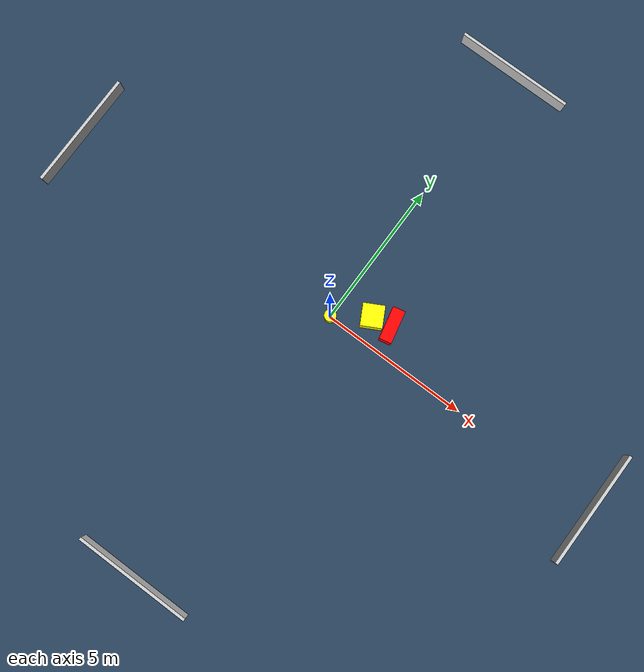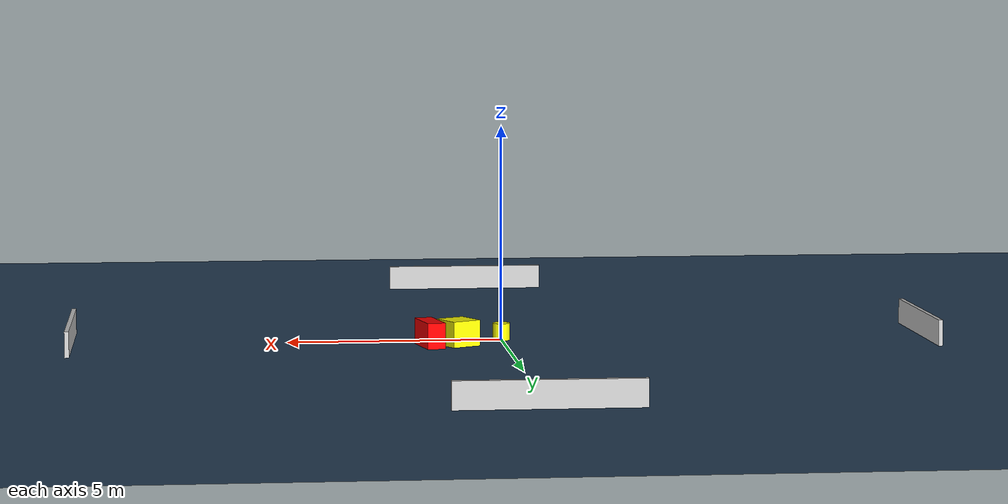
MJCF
<?xml version="1.0" ?>
<mujoco model="generated_environment">
  <option timestep="0.01" integrator="RK4" cone="elliptic"/>
  <default>
    <geom density="1"/>
  </default>
  <asset>
    <texture builtin="gradient" height="3072" name="skybox" rgb1="0.3 0.5 0.7" rgb2="0 0 0" type="skybox" width="512"/>
    <texture builtin="checker" height="300" name="groundplane" rgb1="0.2 0.3 0.4" rgb2="0.1 0.2 0.3" type="2d" width="300"/>
    <material name="groundplane" reflectance="0.2" texrepeat="5 5" texture="groundplane"/>
  </asset>
  <worldbody>
    <light dir="0 0 -1" directional="true" pos="0 0 1.5"/>
    <geom condim="3" friction="0.5 0.005 0.001" material="groundplane" name="floor" pos="0 0 0" size="0 0 0.05" type="plane"/>
    <body name="walls">
      <geom name="wall_1" condim="4" pos="-10.0 0.0 0.3" rgba="0.800000011920929 0.800000011920929 0.800000011920929 1.0" size="0.05 2.0 0.3" type="box"/>
      <geom name="wall_2" condim="4" pos="10.0 0.0 0.3" rgba="0.800000011920929 0.800000011920929 0.800000011920929 1.0" size="0.05 2.0 0.3" type="box"/>
      <geom name="wall_3" condim="4" pos="0.0 -10.0 0.3" rgba="0.800000011920929 0.800000011920929 0.800000011920929 1.0" size="2.0 0.05 0.3" type="box"/>
      <geom name="wall_4" condim="4" pos="0.0 10.0 0.3" rgba="0.800000011920929 0.800000011920929 0.800000011920929 1.0" size="2.0 0.05 0.3" type="box"/>
    </body>
    <body name="robot">
      <joint name="joint_x" type="slide" pos="0 0 0" axis="1 0 0"/>
      <joint name="joint_y" type="slide" pos="0 0 0" axis="0 1 0"/>
      <geom name="robot" type="cylinder" pos="0.0 0.0 0.2" size="0.2 0.2 0.0" mass="5.0" friction="1.0 0.005 0.0001" condim="4" rgba="1.0 1.0 0.0 1.0"/>
    </body>
    <body name="obstacle_1_movable">
      <geom name="obstacle_1_movable" condim="4" pos="1.0771666358066616 0.7713345508507237 0.3" euler="0 0 298.10049723668504" friction="0.0 0.005 0.001" rgba="1.0 1.0 0.0 1.0" size="0.3668084718817803 0.35706496115208713 0.3" type="box" mass="0.1"/>
      <joint type="free"/>
    </body>
    <body name="obstacle_2_static">
      <geom name="obstacle_2_static" condim="4" pos="1.7438651174287856 0.8960290394658871 0.3" euler="0 0 192.35437870049844" friction="0.0 0.005 0.001" rgba="1.0 0.0 0.0 1.0" size="0.2083087586002447 0.5501050142168036 0.3" type="box"/>
    </body>
  </worldbody>
  <actuator>
    <motor name="actuator_x" joint="joint_x" gear="1" ctrlrange="-1 1"/>
    <motor name="actuator_y" joint="joint_y" gear="1" ctrlrange="-1 1"/>
  </actuator>
</mujoco>
